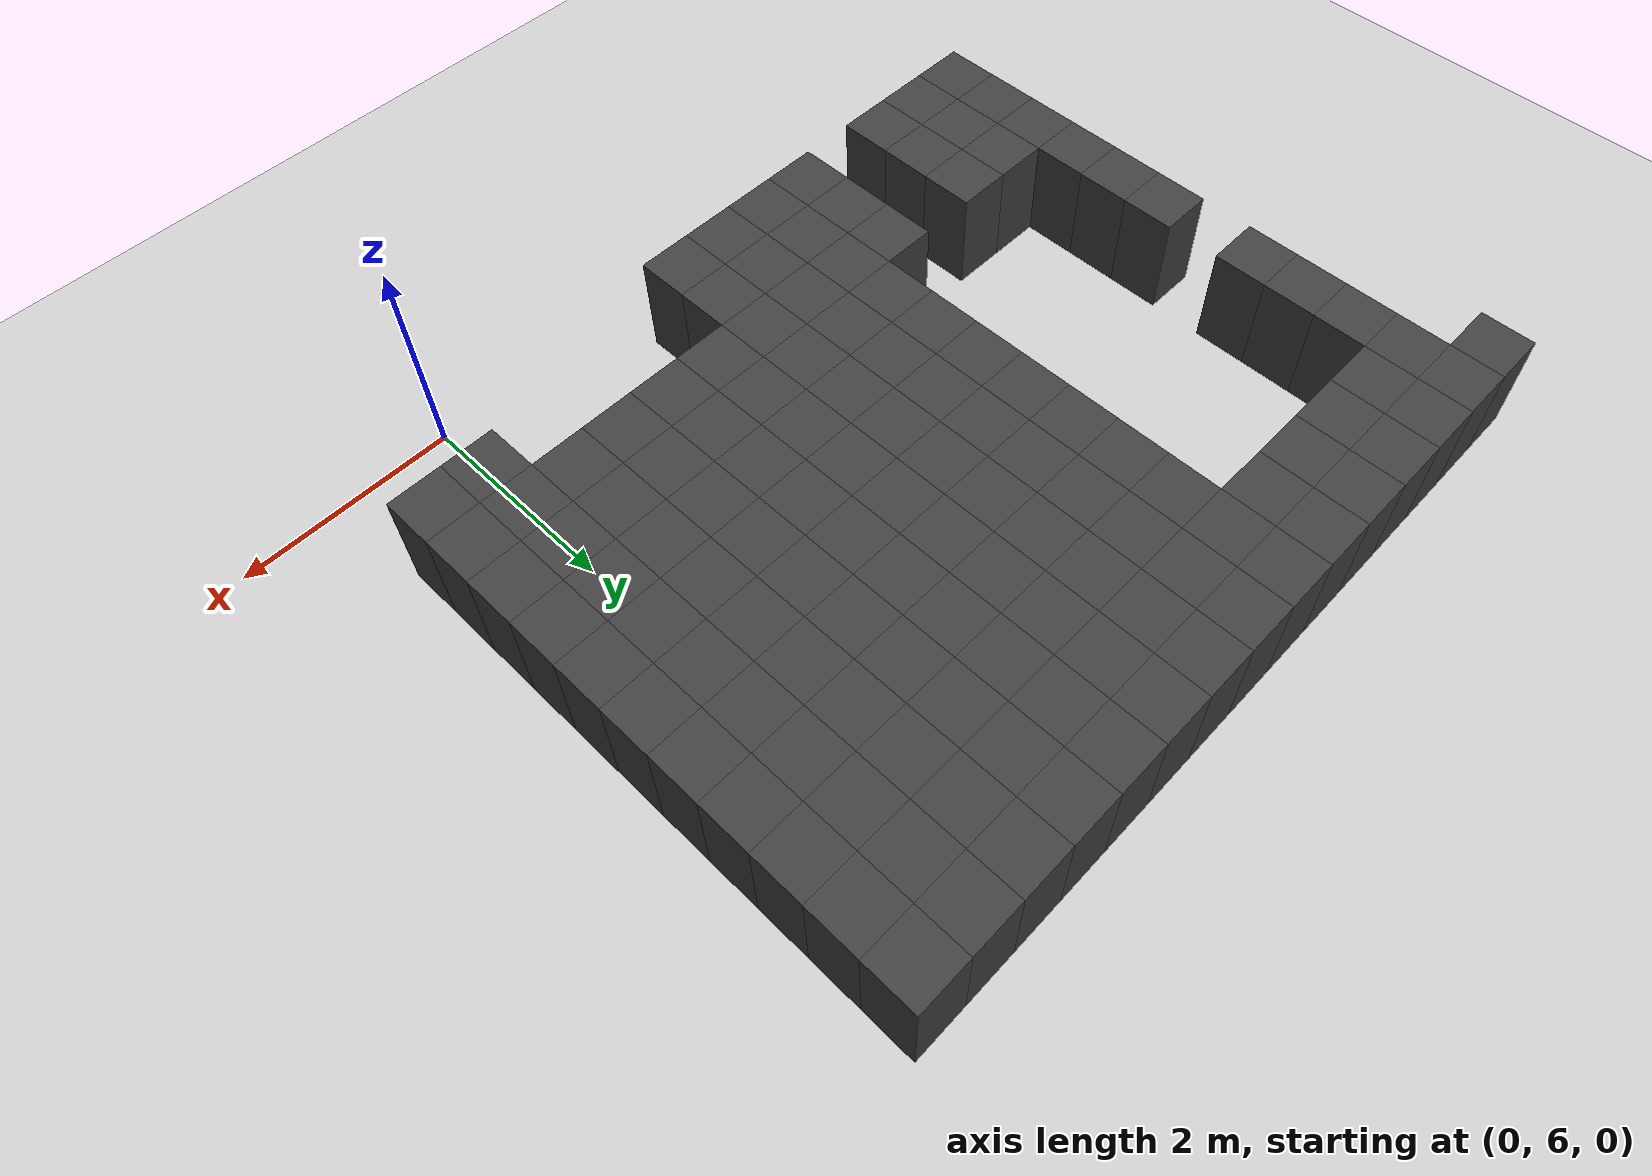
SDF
<sdf version="1.7">
 <world name="map_14190">
  <model name="ground_plane">
   <static>true</static>
   <link name="link">
    <collision name="collision">
     <geometry><plane><normal>0 0 1</normal><size>200 200</size></plane></geometry>
    </collision>
    <visual name="visual">
     <geometry><plane><normal>0 0 1</normal><size>200 200</size></plane></geometry>
     <material><ambient>0.8 0.8 0.8 1</ambient><diffuse>0.8 0.8 0.8 1</diffuse></material>
    </visual>
   </link>
  </model>
  <model name="maze_environment">
   <static>true</static>
   <link name="wall_12">
    <pose>-6.250 12.250 0.500 0 0 0</pose>
    <collision name="col"><geometry><box><size>0.5 0.5 1.0</size></box></geometry></collision>
    <visual name="vis">
     <geometry><box><size>0.5 0.5 1.0</size></box></geometry>
     <material><ambient>0.15 0.15 0.15 1</ambient><diffuse>0.25 0.25 0.25 1</diffuse></material>
    </visual>
   </link>
   <link name="wall_13">
    <pose>-5.750 12.250 0.500 0 0 0</pose>
    <collision name="col"><geometry><box><size>0.5 0.5 1.0</size></box></geometry></collision>
    <visual name="vis">
     <geometry><box><size>0.5 0.5 1.0</size></box></geometry>
     <material><ambient>0.15 0.15 0.15 1</ambient><diffuse>0.25 0.25 0.25 1</diffuse></material>
    </visual>
   </link>
   <link name="wall_14">
    <pose>-5.250 12.250 0.500 0 0 0</pose>
    <collision name="col"><geometry><box><size>0.5 0.5 1.0</size></box></geometry></collision>
    <visual name="vis">
     <geometry><box><size>0.5 0.5 1.0</size></box></geometry>
     <material><ambient>0.15 0.15 0.15 1</ambient><diffuse>0.25 0.25 0.25 1</diffuse></material>
    </visual>
   </link>
   <link name="wall_15">
    <pose>-4.750 12.250 0.500 0 0 0</pose>
    <collision name="col"><geometry><box><size>0.5 0.5 1.0</size></box></geometry></collision>
    <visual name="vis">
     <geometry><box><size>0.5 0.5 1.0</size></box></geometry>
     <material><ambient>0.15 0.15 0.15 1</ambient><diffuse>0.25 0.25 0.25 1</diffuse></material>
    </visual>
   </link>
   <link name="wall_16">
    <pose>-4.250 12.250 0.500 0 0 0</pose>
    <collision name="col"><geometry><box><size>0.5 0.5 1.0</size></box></geometry></collision>
    <visual name="vis">
     <geometry><box><size>0.5 0.5 1.0</size></box></geometry>
     <material><ambient>0.15 0.15 0.15 1</ambient><diffuse>0.25 0.25 0.25 1</diffuse></material>
    </visual>
   </link>
   <link name="wall_17">
    <pose>-3.750 12.250 0.500 0 0 0</pose>
    <collision name="col"><geometry><box><size>0.5 0.5 1.0</size></box></geometry></collision>
    <visual name="vis">
     <geometry><box><size>0.5 0.5 1.0</size></box></geometry>
     <material><ambient>0.15 0.15 0.15 1</ambient><diffuse>0.25 0.25 0.25 1</diffuse></material>
    </visual>
   </link>
   <link name="wall_18">
    <pose>-3.250 12.250 0.500 0 0 0</pose>
    <collision name="col"><geometry><box><size>0.5 0.5 1.0</size></box></geometry></collision>
    <visual name="vis">
     <geometry><box><size>0.5 0.5 1.0</size></box></geometry>
     <material><ambient>0.15 0.15 0.15 1</ambient><diffuse>0.25 0.25 0.25 1</diffuse></material>
    </visual>
   </link>
   <link name="wall_19">
    <pose>-2.750 12.250 0.500 0 0 0</pose>
    <collision name="col"><geometry><box><size>0.5 0.5 1.0</size></box></geometry></collision>
    <visual name="vis">
     <geometry><box><size>0.5 0.5 1.0</size></box></geometry>
     <material><ambient>0.15 0.15 0.15 1</ambient><diffuse>0.25 0.25 0.25 1</diffuse></material>
    </visual>
   </link>
   <link name="wall_20">
    <pose>-2.250 12.250 0.500 0 0 0</pose>
    <collision name="col"><geometry><box><size>0.5 0.5 1.0</size></box></geometry></collision>
    <visual name="vis">
     <geometry><box><size>0.5 0.5 1.0</size></box></geometry>
     <material><ambient>0.15 0.15 0.15 1</ambient><diffuse>0.25 0.25 0.25 1</diffuse></material>
    </visual>
   </link>
   <link name="wall_21">
    <pose>-1.750 12.250 0.500 0 0 0</pose>
    <collision name="col"><geometry><box><size>0.5 0.5 1.0</size></box></geometry></collision>
    <visual name="vis">
     <geometry><box><size>0.5 0.5 1.0</size></box></geometry>
     <material><ambient>0.15 0.15 0.15 1</ambient><diffuse>0.25 0.25 0.25 1</diffuse></material>
    </visual>
   </link>
   <link name="wall_22">
    <pose>-1.250 12.250 0.500 0 0 0</pose>
    <collision name="col"><geometry><box><size>0.5 0.5 1.0</size></box></geometry></collision>
    <visual name="vis">
     <geometry><box><size>0.5 0.5 1.0</size></box></geometry>
     <material><ambient>0.15 0.15 0.15 1</ambient><diffuse>0.25 0.25 0.25 1</diffuse></material>
    </visual>
   </link>
   <link name="wall_23">
    <pose>-0.750 12.250 0.500 0 0 0</pose>
    <collision name="col"><geometry><box><size>0.5 0.5 1.0</size></box></geometry></collision>
    <visual name="vis">
     <geometry><box><size>0.5 0.5 1.0</size></box></geometry>
     <material><ambient>0.15 0.15 0.15 1</ambient><diffuse>0.25 0.25 0.25 1</diffuse></material>
    </visual>
   </link>
   <link name="wall_24">
    <pose>-0.250 12.250 0.500 0 0 0</pose>
    <collision name="col"><geometry><box><size>0.5 0.5 1.0</size></box></geometry></collision>
    <visual name="vis">
     <geometry><box><size>0.5 0.5 1.0</size></box></geometry>
     <material><ambient>0.15 0.15 0.15 1</ambient><diffuse>0.25 0.25 0.25 1</diffuse></material>
    </visual>
   </link>
   <link name="wall_25">
    <pose>0.250 12.250 0.500 0 0 0</pose>
    <collision name="col"><geometry><box><size>0.5 0.5 1.0</size></box></geometry></collision>
    <visual name="vis">
     <geometry><box><size>0.5 0.5 1.0</size></box></geometry>
     <material><ambient>0.15 0.15 0.15 1</ambient><diffuse>0.25 0.25 0.25 1</diffuse></material>
    </visual>
   </link>
   <link name="wall_26">
    <pose>0.750 12.250 0.500 0 0 0</pose>
    <collision name="col"><geometry><box><size>0.5 0.5 1.0</size></box></geometry></collision>
    <visual name="vis">
     <geometry><box><size>0.5 0.5 1.0</size></box></geometry>
     <material><ambient>0.15 0.15 0.15 1</ambient><diffuse>0.25 0.25 0.25 1</diffuse></material>
    </visual>
   </link>
   <link name="wall_60">
    <pose>-5.750 11.750 0.500 0 0 0</pose>
    <collision name="col"><geometry><box><size>0.5 0.5 1.0</size></box></geometry></collision>
    <visual name="vis">
     <geometry><box><size>0.5 0.5 1.0</size></box></geometry>
     <material><ambient>0.15 0.15 0.15 1</ambient><diffuse>0.25 0.25 0.25 1</diffuse></material>
    </visual>
   </link>
   <link name="wall_61">
    <pose>-5.250 11.750 0.500 0 0 0</pose>
    <collision name="col"><geometry><box><size>0.5 0.5 1.0</size></box></geometry></collision>
    <visual name="vis">
     <geometry><box><size>0.5 0.5 1.0</size></box></geometry>
     <material><ambient>0.15 0.15 0.15 1</ambient><diffuse>0.25 0.25 0.25 1</diffuse></material>
    </visual>
   </link>
   <link name="wall_62">
    <pose>-4.750 11.750 0.500 0 0 0</pose>
    <collision name="col"><geometry><box><size>0.5 0.5 1.0</size></box></geometry></collision>
    <visual name="vis">
     <geometry><box><size>0.5 0.5 1.0</size></box></geometry>
     <material><ambient>0.15 0.15 0.15 1</ambient><diffuse>0.25 0.25 0.25 1</diffuse></material>
    </visual>
   </link>
   <link name="wall_63">
    <pose>-4.250 11.750 0.500 0 0 0</pose>
    <collision name="col"><geometry><box><size>0.5 0.5 1.0</size></box></geometry></collision>
    <visual name="vis">
     <geometry><box><size>0.5 0.5 1.0</size></box></geometry>
     <material><ambient>0.15 0.15 0.15 1</ambient><diffuse>0.25 0.25 0.25 1</diffuse></material>
    </visual>
   </link>
   <link name="wall_64">
    <pose>-3.750 11.750 0.500 0 0 0</pose>
    <collision name="col"><geometry><box><size>0.5 0.5 1.0</size></box></geometry></collision>
    <visual name="vis">
     <geometry><box><size>0.5 0.5 1.0</size></box></geometry>
     <material><ambient>0.15 0.15 0.15 1</ambient><diffuse>0.25 0.25 0.25 1</diffuse></material>
    </visual>
   </link>
   <link name="wall_65">
    <pose>-3.250 11.750 0.500 0 0 0</pose>
    <collision name="col"><geometry><box><size>0.5 0.5 1.0</size></box></geometry></collision>
    <visual name="vis">
     <geometry><box><size>0.5 0.5 1.0</size></box></geometry>
     <material><ambient>0.15 0.15 0.15 1</ambient><diffuse>0.25 0.25 0.25 1</diffuse></material>
    </visual>
   </link>
   <link name="wall_66">
    <pose>-2.750 11.750 0.500 0 0 0</pose>
    <collision name="col"><geometry><box><size>0.5 0.5 1.0</size></box></geometry></collision>
    <visual name="vis">
     <geometry><box><size>0.5 0.5 1.0</size></box></geometry>
     <material><ambient>0.15 0.15 0.15 1</ambient><diffuse>0.25 0.25 0.25 1</diffuse></material>
    </visual>
   </link>
   <link name="wall_67">
    <pose>-2.250 11.750 0.500 0 0 0</pose>
    <collision name="col"><geometry><box><size>0.5 0.5 1.0</size></box></geometry></collision>
    <visual name="vis">
     <geometry><box><size>0.5 0.5 1.0</size></box></geometry>
     <material><ambient>0.15 0.15 0.15 1</ambient><diffuse>0.25 0.25 0.25 1</diffuse></material>
    </visual>
   </link>
   <link name="wall_68">
    <pose>-1.750 11.750 0.500 0 0 0</pose>
    <collision name="col"><geometry><box><size>0.5 0.5 1.0</size></box></geometry></collision>
    <visual name="vis">
     <geometry><box><size>0.5 0.5 1.0</size></box></geometry>
     <material><ambient>0.15 0.15 0.15 1</ambient><diffuse>0.25 0.25 0.25 1</diffuse></material>
    </visual>
   </link>
   <link name="wall_69">
    <pose>-1.250 11.750 0.500 0 0 0</pose>
    <collision name="col"><geometry><box><size>0.5 0.5 1.0</size></box></geometry></collision>
    <visual name="vis">
     <geometry><box><size>0.5 0.5 1.0</size></box></geometry>
     <material><ambient>0.15 0.15 0.15 1</ambient><diffuse>0.25 0.25 0.25 1</diffuse></material>
    </visual>
   </link>
   <link name="wall_70">
    <pose>-0.750 11.750 0.500 0 0 0</pose>
    <collision name="col"><geometry><box><size>0.5 0.5 1.0</size></box></geometry></collision>
    <visual name="vis">
     <geometry><box><size>0.5 0.5 1.0</size></box></geometry>
     <material><ambient>0.15 0.15 0.15 1</ambient><diffuse>0.25 0.25 0.25 1</diffuse></material>
    </visual>
   </link>
   <link name="wall_71">
    <pose>-0.250 11.750 0.500 0 0 0</pose>
    <collision name="col"><geometry><box><size>0.5 0.5 1.0</size></box></geometry></collision>
    <visual name="vis">
     <geometry><box><size>0.5 0.5 1.0</size></box></geometry>
     <material><ambient>0.15 0.15 0.15 1</ambient><diffuse>0.25 0.25 0.25 1</diffuse></material>
    </visual>
   </link>
   <link name="wall_72">
    <pose>0.250 11.750 0.500 0 0 0</pose>
    <collision name="col"><geometry><box><size>0.5 0.5 1.0</size></box></geometry></collision>
    <visual name="vis">
     <geometry><box><size>0.5 0.5 1.0</size></box></geometry>
     <material><ambient>0.15 0.15 0.15 1</ambient><diffuse>0.25 0.25 0.25 1</diffuse></material>
    </visual>
   </link>
   <link name="wall_73">
    <pose>0.750 11.750 0.500 0 0 0</pose>
    <collision name="col"><geometry><box><size>0.5 0.5 1.0</size></box></geometry></collision>
    <visual name="vis">
     <geometry><box><size>0.5 0.5 1.0</size></box></geometry>
     <material><ambient>0.15 0.15 0.15 1</ambient><diffuse>0.25 0.25 0.25 1</diffuse></material>
    </visual>
   </link>
   <link name="wall_107">
    <pose>-5.750 11.250 0.500 0 0 0</pose>
    <collision name="col"><geometry><box><size>0.5 0.5 1.0</size></box></geometry></collision>
    <visual name="vis">
     <geometry><box><size>0.5 0.5 1.0</size></box></geometry>
     <material><ambient>0.15 0.15 0.15 1</ambient><diffuse>0.25 0.25 0.25 1</diffuse></material>
    </visual>
   </link>
   <link name="wall_108">
    <pose>-3.250 11.250 0.500 0 0 0</pose>
    <collision name="col"><geometry><box><size>0.5 0.5 1.0</size></box></geometry></collision>
    <visual name="vis">
     <geometry><box><size>0.5 0.5 1.0</size></box></geometry>
     <material><ambient>0.15 0.15 0.15 1</ambient><diffuse>0.25 0.25 0.25 1</diffuse></material>
    </visual>
   </link>
   <link name="wall_109">
    <pose>-2.750 11.250 0.500 0 0 0</pose>
    <collision name="col"><geometry><box><size>0.5 0.5 1.0</size></box></geometry></collision>
    <visual name="vis">
     <geometry><box><size>0.5 0.5 1.0</size></box></geometry>
     <material><ambient>0.15 0.15 0.15 1</ambient><diffuse>0.25 0.25 0.25 1</diffuse></material>
    </visual>
   </link>
   <link name="wall_110">
    <pose>-2.250 11.250 0.500 0 0 0</pose>
    <collision name="col"><geometry><box><size>0.5 0.5 1.0</size></box></geometry></collision>
    <visual name="vis">
     <geometry><box><size>0.5 0.5 1.0</size></box></geometry>
     <material><ambient>0.15 0.15 0.15 1</ambient><diffuse>0.25 0.25 0.25 1</diffuse></material>
    </visual>
   </link>
   <link name="wall_111">
    <pose>-1.750 11.250 0.500 0 0 0</pose>
    <collision name="col"><geometry><box><size>0.5 0.5 1.0</size></box></geometry></collision>
    <visual name="vis">
     <geometry><box><size>0.5 0.5 1.0</size></box></geometry>
     <material><ambient>0.15 0.15 0.15 1</ambient><diffuse>0.25 0.25 0.25 1</diffuse></material>
    </visual>
   </link>
   <link name="wall_112">
    <pose>-1.250 11.250 0.500 0 0 0</pose>
    <collision name="col"><geometry><box><size>0.5 0.5 1.0</size></box></geometry></collision>
    <visual name="vis">
     <geometry><box><size>0.5 0.5 1.0</size></box></geometry>
     <material><ambient>0.15 0.15 0.15 1</ambient><diffuse>0.25 0.25 0.25 1</diffuse></material>
    </visual>
   </link>
   <link name="wall_113">
    <pose>-0.750 11.250 0.500 0 0 0</pose>
    <collision name="col"><geometry><box><size>0.5 0.5 1.0</size></box></geometry></collision>
    <visual name="vis">
     <geometry><box><size>0.5 0.5 1.0</size></box></geometry>
     <material><ambient>0.15 0.15 0.15 1</ambient><diffuse>0.25 0.25 0.25 1</diffuse></material>
    </visual>
   </link>
   <link name="wall_114">
    <pose>-0.250 11.250 0.500 0 0 0</pose>
    <collision name="col"><geometry><box><size>0.5 0.5 1.0</size></box></geometry></collision>
    <visual name="vis">
     <geometry><box><size>0.5 0.5 1.0</size></box></geometry>
     <material><ambient>0.15 0.15 0.15 1</ambient><diffuse>0.25 0.25 0.25 1</diffuse></material>
    </visual>
   </link>
   <link name="wall_115">
    <pose>0.250 11.250 0.500 0 0 0</pose>
    <collision name="col"><geometry><box><size>0.5 0.5 1.0</size></box></geometry></collision>
    <visual name="vis">
     <geometry><box><size>0.5 0.5 1.0</size></box></geometry>
     <material><ambient>0.15 0.15 0.15 1</ambient><diffuse>0.25 0.25 0.25 1</diffuse></material>
    </visual>
   </link>
   <link name="wall_116">
    <pose>0.750 11.250 0.500 0 0 0</pose>
    <collision name="col"><geometry><box><size>0.5 0.5 1.0</size></box></geometry></collision>
    <visual name="vis">
     <geometry><box><size>0.5 0.5 1.0</size></box></geometry>
     <material><ambient>0.15 0.15 0.15 1</ambient><diffuse>0.25 0.25 0.25 1</diffuse></material>
    </visual>
   </link>
   <link name="wall_150">
    <pose>-5.750 10.750 0.500 0 0 0</pose>
    <collision name="col"><geometry><box><size>0.5 0.5 1.0</size></box></geometry></collision>
    <visual name="vis">
     <geometry><box><size>0.5 0.5 1.0</size></box></geometry>
     <material><ambient>0.15 0.15 0.15 1</ambient><diffuse>0.25 0.25 0.25 1</diffuse></material>
    </visual>
   </link>
   <link name="wall_151">
    <pose>-3.250 10.750 0.500 0 0 0</pose>
    <collision name="col"><geometry><box><size>0.5 0.5 1.0</size></box></geometry></collision>
    <visual name="vis">
     <geometry><box><size>0.5 0.5 1.0</size></box></geometry>
     <material><ambient>0.15 0.15 0.15 1</ambient><diffuse>0.25 0.25 0.25 1</diffuse></material>
    </visual>
   </link>
   <link name="wall_152">
    <pose>-2.750 10.750 0.500 0 0 0</pose>
    <collision name="col"><geometry><box><size>0.5 0.5 1.0</size></box></geometry></collision>
    <visual name="vis">
     <geometry><box><size>0.5 0.5 1.0</size></box></geometry>
     <material><ambient>0.15 0.15 0.15 1</ambient><diffuse>0.25 0.25 0.25 1</diffuse></material>
    </visual>
   </link>
   <link name="wall_153">
    <pose>-2.250 10.750 0.500 0 0 0</pose>
    <collision name="col"><geometry><box><size>0.5 0.5 1.0</size></box></geometry></collision>
    <visual name="vis">
     <geometry><box><size>0.5 0.5 1.0</size></box></geometry>
     <material><ambient>0.15 0.15 0.15 1</ambient><diffuse>0.25 0.25 0.25 1</diffuse></material>
    </visual>
   </link>
   <link name="wall_154">
    <pose>-1.750 10.750 0.500 0 0 0</pose>
    <collision name="col"><geometry><box><size>0.5 0.5 1.0</size></box></geometry></collision>
    <visual name="vis">
     <geometry><box><size>0.5 0.5 1.0</size></box></geometry>
     <material><ambient>0.15 0.15 0.15 1</ambient><diffuse>0.25 0.25 0.25 1</diffuse></material>
    </visual>
   </link>
   <link name="wall_155">
    <pose>-1.250 10.750 0.500 0 0 0</pose>
    <collision name="col"><geometry><box><size>0.5 0.5 1.0</size></box></geometry></collision>
    <visual name="vis">
     <geometry><box><size>0.5 0.5 1.0</size></box></geometry>
     <material><ambient>0.15 0.15 0.15 1</ambient><diffuse>0.25 0.25 0.25 1</diffuse></material>
    </visual>
   </link>
   <link name="wall_156">
    <pose>-0.750 10.750 0.500 0 0 0</pose>
    <collision name="col"><geometry><box><size>0.5 0.5 1.0</size></box></geometry></collision>
    <visual name="vis">
     <geometry><box><size>0.5 0.5 1.0</size></box></geometry>
     <material><ambient>0.15 0.15 0.15 1</ambient><diffuse>0.25 0.25 0.25 1</diffuse></material>
    </visual>
   </link>
   <link name="wall_157">
    <pose>-0.250 10.750 0.500 0 0 0</pose>
    <collision name="col"><geometry><box><size>0.5 0.5 1.0</size></box></geometry></collision>
    <visual name="vis">
     <geometry><box><size>0.5 0.5 1.0</size></box></geometry>
     <material><ambient>0.15 0.15 0.15 1</ambient><diffuse>0.25 0.25 0.25 1</diffuse></material>
    </visual>
   </link>
   <link name="wall_158">
    <pose>0.250 10.750 0.500 0 0 0</pose>
    <collision name="col"><geometry><box><size>0.5 0.5 1.0</size></box></geometry></collision>
    <visual name="vis">
     <geometry><box><size>0.5 0.5 1.0</size></box></geometry>
     <material><ambient>0.15 0.15 0.15 1</ambient><diffuse>0.25 0.25 0.25 1</diffuse></material>
    </visual>
   </link>
   <link name="wall_159">
    <pose>0.750 10.750 0.500 0 0 0</pose>
    <collision name="col"><geometry><box><size>0.5 0.5 1.0</size></box></geometry></collision>
    <visual name="vis">
     <geometry><box><size>0.5 0.5 1.0</size></box></geometry>
     <material><ambient>0.15 0.15 0.15 1</ambient><diffuse>0.25 0.25 0.25 1</diffuse></material>
    </visual>
   </link>
   <link name="wall_195">
    <pose>-5.750 10.250 0.500 0 0 0</pose>
    <collision name="col"><geometry><box><size>0.5 0.5 1.0</size></box></geometry></collision>
    <visual name="vis">
     <geometry><box><size>0.5 0.5 1.0</size></box></geometry>
     <material><ambient>0.15 0.15 0.15 1</ambient><diffuse>0.25 0.25 0.25 1</diffuse></material>
    </visual>
   </link>
   <link name="wall_196">
    <pose>-3.250 10.250 0.500 0 0 0</pose>
    <collision name="col"><geometry><box><size>0.5 0.5 1.0</size></box></geometry></collision>
    <visual name="vis">
     <geometry><box><size>0.5 0.5 1.0</size></box></geometry>
     <material><ambient>0.15 0.15 0.15 1</ambient><diffuse>0.25 0.25 0.25 1</diffuse></material>
    </visual>
   </link>
   <link name="wall_197">
    <pose>-2.750 10.250 0.500 0 0 0</pose>
    <collision name="col"><geometry><box><size>0.5 0.5 1.0</size></box></geometry></collision>
    <visual name="vis">
     <geometry><box><size>0.5 0.5 1.0</size></box></geometry>
     <material><ambient>0.15 0.15 0.15 1</ambient><diffuse>0.25 0.25 0.25 1</diffuse></material>
    </visual>
   </link>
   <link name="wall_198">
    <pose>-2.250 10.250 0.500 0 0 0</pose>
    <collision name="col"><geometry><box><size>0.5 0.5 1.0</size></box></geometry></collision>
    <visual name="vis">
     <geometry><box><size>0.5 0.5 1.0</size></box></geometry>
     <material><ambient>0.15 0.15 0.15 1</ambient><diffuse>0.25 0.25 0.25 1</diffuse></material>
    </visual>
   </link>
   <link name="wall_199">
    <pose>-1.750 10.250 0.500 0 0 0</pose>
    <collision name="col"><geometry><box><size>0.5 0.5 1.0</size></box></geometry></collision>
    <visual name="vis">
     <geometry><box><size>0.5 0.5 1.0</size></box></geometry>
     <material><ambient>0.15 0.15 0.15 1</ambient><diffuse>0.25 0.25 0.25 1</diffuse></material>
    </visual>
   </link>
   <link name="wall_200">
    <pose>-1.250 10.250 0.500 0 0 0</pose>
    <collision name="col"><geometry><box><size>0.5 0.5 1.0</size></box></geometry></collision>
    <visual name="vis">
     <geometry><box><size>0.5 0.5 1.0</size></box></geometry>
     <material><ambient>0.15 0.15 0.15 1</ambient><diffuse>0.25 0.25 0.25 1</diffuse></material>
    </visual>
   </link>
   <link name="wall_201">
    <pose>-0.750 10.250 0.500 0 0 0</pose>
    <collision name="col"><geometry><box><size>0.5 0.5 1.0</size></box></geometry></collision>
    <visual name="vis">
     <geometry><box><size>0.5 0.5 1.0</size></box></geometry>
     <material><ambient>0.15 0.15 0.15 1</ambient><diffuse>0.25 0.25 0.25 1</diffuse></material>
    </visual>
   </link>
   <link name="wall_202">
    <pose>-0.250 10.250 0.500 0 0 0</pose>
    <collision name="col"><geometry><box><size>0.5 0.5 1.0</size></box></geometry></collision>
    <visual name="vis">
     <geometry><box><size>0.5 0.5 1.0</size></box></geometry>
     <material><ambient>0.15 0.15 0.15 1</ambient><diffuse>0.25 0.25 0.25 1</diffuse></material>
    </visual>
   </link>
   <link name="wall_203">
    <pose>0.250 10.250 0.500 0 0 0</pose>
    <collision name="col"><geometry><box><size>0.5 0.5 1.0</size></box></geometry></collision>
    <visual name="vis">
     <geometry><box><size>0.5 0.5 1.0</size></box></geometry>
     <material><ambient>0.15 0.15 0.15 1</ambient><diffuse>0.25 0.25 0.25 1</diffuse></material>
    </visual>
   </link>
   <link name="wall_204">
    <pose>0.750 10.250 0.500 0 0 0</pose>
    <collision name="col"><geometry><box><size>0.5 0.5 1.0</size></box></geometry></collision>
    <visual name="vis">
     <geometry><box><size>0.5 0.5 1.0</size></box></geometry>
     <material><ambient>0.15 0.15 0.15 1</ambient><diffuse>0.25 0.25 0.25 1</diffuse></material>
    </visual>
   </link>
   <link name="wall_230">
    <pose>-3.250 9.750 0.500 0 0 0</pose>
    <collision name="col"><geometry><box><size>0.5 0.5 1.0</size></box></geometry></collision>
    <visual name="vis">
     <geometry><box><size>0.5 0.5 1.0</size></box></geometry>
     <material><ambient>0.15 0.15 0.15 1</ambient><diffuse>0.25 0.25 0.25 1</diffuse></material>
    </visual>
   </link>
   <link name="wall_231">
    <pose>-2.750 9.750 0.500 0 0 0</pose>
    <collision name="col"><geometry><box><size>0.5 0.5 1.0</size></box></geometry></collision>
    <visual name="vis">
     <geometry><box><size>0.5 0.5 1.0</size></box></geometry>
     <material><ambient>0.15 0.15 0.15 1</ambient><diffuse>0.25 0.25 0.25 1</diffuse></material>
    </visual>
   </link>
   <link name="wall_232">
    <pose>-2.250 9.750 0.500 0 0 0</pose>
    <collision name="col"><geometry><box><size>0.5 0.5 1.0</size></box></geometry></collision>
    <visual name="vis">
     <geometry><box><size>0.5 0.5 1.0</size></box></geometry>
     <material><ambient>0.15 0.15 0.15 1</ambient><diffuse>0.25 0.25 0.25 1</diffuse></material>
    </visual>
   </link>
   <link name="wall_233">
    <pose>-1.750 9.750 0.500 0 0 0</pose>
    <collision name="col"><geometry><box><size>0.5 0.5 1.0</size></box></geometry></collision>
    <visual name="vis">
     <geometry><box><size>0.5 0.5 1.0</size></box></geometry>
     <material><ambient>0.15 0.15 0.15 1</ambient><diffuse>0.25 0.25 0.25 1</diffuse></material>
    </visual>
   </link>
   <link name="wall_234">
    <pose>-1.250 9.750 0.500 0 0 0</pose>
    <collision name="col"><geometry><box><size>0.5 0.5 1.0</size></box></geometry></collision>
    <visual name="vis">
     <geometry><box><size>0.5 0.5 1.0</size></box></geometry>
     <material><ambient>0.15 0.15 0.15 1</ambient><diffuse>0.25 0.25 0.25 1</diffuse></material>
    </visual>
   </link>
   <link name="wall_235">
    <pose>-0.750 9.750 0.500 0 0 0</pose>
    <collision name="col"><geometry><box><size>0.5 0.5 1.0</size></box></geometry></collision>
    <visual name="vis">
     <geometry><box><size>0.5 0.5 1.0</size></box></geometry>
     <material><ambient>0.15 0.15 0.15 1</ambient><diffuse>0.25 0.25 0.25 1</diffuse></material>
    </visual>
   </link>
   <link name="wall_236">
    <pose>-0.250 9.750 0.500 0 0 0</pose>
    <collision name="col"><geometry><box><size>0.5 0.5 1.0</size></box></geometry></collision>
    <visual name="vis">
     <geometry><box><size>0.5 0.5 1.0</size></box></geometry>
     <material><ambient>0.15 0.15 0.15 1</ambient><diffuse>0.25 0.25 0.25 1</diffuse></material>
    </visual>
   </link>
   <link name="wall_237">
    <pose>0.250 9.750 0.500 0 0 0</pose>
    <collision name="col"><geometry><box><size>0.5 0.5 1.0</size></box></geometry></collision>
    <visual name="vis">
     <geometry><box><size>0.5 0.5 1.0</size></box></geometry>
     <material><ambient>0.15 0.15 0.15 1</ambient><diffuse>0.25 0.25 0.25 1</diffuse></material>
    </visual>
   </link>
   <link name="wall_238">
    <pose>0.750 9.750 0.500 0 0 0</pose>
    <collision name="col"><geometry><box><size>0.5 0.5 1.0</size></box></geometry></collision>
    <visual name="vis">
     <geometry><box><size>0.5 0.5 1.0</size></box></geometry>
     <material><ambient>0.15 0.15 0.15 1</ambient><diffuse>0.25 0.25 0.25 1</diffuse></material>
    </visual>
   </link>
   <link name="wall_269">
    <pose>-5.750 9.250 0.500 0 0 0</pose>
    <collision name="col"><geometry><box><size>0.5 0.5 1.0</size></box></geometry></collision>
    <visual name="vis">
     <geometry><box><size>0.5 0.5 1.0</size></box></geometry>
     <material><ambient>0.15 0.15 0.15 1</ambient><diffuse>0.25 0.25 0.25 1</diffuse></material>
    </visual>
   </link>
   <link name="wall_270">
    <pose>-3.250 9.250 0.500 0 0 0</pose>
    <collision name="col"><geometry><box><size>0.5 0.5 1.0</size></box></geometry></collision>
    <visual name="vis">
     <geometry><box><size>0.5 0.5 1.0</size></box></geometry>
     <material><ambient>0.15 0.15 0.15 1</ambient><diffuse>0.25 0.25 0.25 1</diffuse></material>
    </visual>
   </link>
   <link name="wall_271">
    <pose>-2.750 9.250 0.500 0 0 0</pose>
    <collision name="col"><geometry><box><size>0.5 0.5 1.0</size></box></geometry></collision>
    <visual name="vis">
     <geometry><box><size>0.5 0.5 1.0</size></box></geometry>
     <material><ambient>0.15 0.15 0.15 1</ambient><diffuse>0.25 0.25 0.25 1</diffuse></material>
    </visual>
   </link>
   <link name="wall_272">
    <pose>-2.250 9.250 0.500 0 0 0</pose>
    <collision name="col"><geometry><box><size>0.5 0.5 1.0</size></box></geometry></collision>
    <visual name="vis">
     <geometry><box><size>0.5 0.5 1.0</size></box></geometry>
     <material><ambient>0.15 0.15 0.15 1</ambient><diffuse>0.25 0.25 0.25 1</diffuse></material>
    </visual>
   </link>
   <link name="wall_273">
    <pose>-1.750 9.250 0.500 0 0 0</pose>
    <collision name="col"><geometry><box><size>0.5 0.5 1.0</size></box></geometry></collision>
    <visual name="vis">
     <geometry><box><size>0.5 0.5 1.0</size></box></geometry>
     <material><ambient>0.15 0.15 0.15 1</ambient><diffuse>0.25 0.25 0.25 1</diffuse></material>
    </visual>
   </link>
   <link name="wall_274">
    <pose>-1.250 9.250 0.500 0 0 0</pose>
    <collision name="col"><geometry><box><size>0.5 0.5 1.0</size></box></geometry></collision>
    <visual name="vis">
     <geometry><box><size>0.5 0.5 1.0</size></box></geometry>
     <material><ambient>0.15 0.15 0.15 1</ambient><diffuse>0.25 0.25 0.25 1</diffuse></material>
    </visual>
   </link>
   <link name="wall_275">
    <pose>-0.750 9.250 0.500 0 0 0</pose>
    <collision name="col"><geometry><box><size>0.5 0.5 1.0</size></box></geometry></collision>
    <visual name="vis">
     <geometry><box><size>0.5 0.5 1.0</size></box></geometry>
     <material><ambient>0.15 0.15 0.15 1</ambient><diffuse>0.25 0.25 0.25 1</diffuse></material>
    </visual>
   </link>
   <link name="wall_276">
    <pose>-0.250 9.250 0.500 0 0 0</pose>
    <collision name="col"><geometry><box><size>0.5 0.5 1.0</size></box></geometry></collision>
    <visual name="vis">
     <geometry><box><size>0.5 0.5 1.0</size></box></geometry>
     <material><ambient>0.15 0.15 0.15 1</ambient><diffuse>0.25 0.25 0.25 1</diffuse></material>
    </visual>
   </link>
   <link name="wall_277">
    <pose>0.250 9.250 0.500 0 0 0</pose>
    <collision name="col"><geometry><box><size>0.5 0.5 1.0</size></box></geometry></collision>
    <visual name="vis">
     <geometry><box><size>0.5 0.5 1.0</size></box></geometry>
     <material><ambient>0.15 0.15 0.15 1</ambient><diffuse>0.25 0.25 0.25 1</diffuse></material>
    </visual>
   </link>
   <link name="wall_278">
    <pose>0.750 9.250 0.500 0 0 0</pose>
    <collision name="col"><geometry><box><size>0.5 0.5 1.0</size></box></geometry></collision>
    <visual name="vis">
     <geometry><box><size>0.5 0.5 1.0</size></box></geometry>
     <material><ambient>0.15 0.15 0.15 1</ambient><diffuse>0.25 0.25 0.25 1</diffuse></material>
    </visual>
   </link>
   <link name="wall_309">
    <pose>-5.750 8.750 0.500 0 0 0</pose>
    <collision name="col"><geometry><box><size>0.5 0.5 1.0</size></box></geometry></collision>
    <visual name="vis">
     <geometry><box><size>0.5 0.5 1.0</size></box></geometry>
     <material><ambient>0.15 0.15 0.15 1</ambient><diffuse>0.25 0.25 0.25 1</diffuse></material>
    </visual>
   </link>
   <link name="wall_310">
    <pose>-3.250 8.750 0.500 0 0 0</pose>
    <collision name="col"><geometry><box><size>0.5 0.5 1.0</size></box></geometry></collision>
    <visual name="vis">
     <geometry><box><size>0.5 0.5 1.0</size></box></geometry>
     <material><ambient>0.15 0.15 0.15 1</ambient><diffuse>0.25 0.25 0.25 1</diffuse></material>
    </visual>
   </link>
   <link name="wall_311">
    <pose>-2.750 8.750 0.500 0 0 0</pose>
    <collision name="col"><geometry><box><size>0.5 0.5 1.0</size></box></geometry></collision>
    <visual name="vis">
     <geometry><box><size>0.5 0.5 1.0</size></box></geometry>
     <material><ambient>0.15 0.15 0.15 1</ambient><diffuse>0.25 0.25 0.25 1</diffuse></material>
    </visual>
   </link>
   <link name="wall_312">
    <pose>-2.250 8.750 0.500 0 0 0</pose>
    <collision name="col"><geometry><box><size>0.5 0.5 1.0</size></box></geometry></collision>
    <visual name="vis">
     <geometry><box><size>0.5 0.5 1.0</size></box></geometry>
     <material><ambient>0.15 0.15 0.15 1</ambient><diffuse>0.25 0.25 0.25 1</diffuse></material>
    </visual>
   </link>
   <link name="wall_313">
    <pose>-1.750 8.750 0.500 0 0 0</pose>
    <collision name="col"><geometry><box><size>0.5 0.5 1.0</size></box></geometry></collision>
    <visual name="vis">
     <geometry><box><size>0.5 0.5 1.0</size></box></geometry>
     <material><ambient>0.15 0.15 0.15 1</ambient><diffuse>0.25 0.25 0.25 1</diffuse></material>
    </visual>
   </link>
   <link name="wall_314">
    <pose>-1.250 8.750 0.500 0 0 0</pose>
    <collision name="col"><geometry><box><size>0.5 0.5 1.0</size></box></geometry></collision>
    <visual name="vis">
     <geometry><box><size>0.5 0.5 1.0</size></box></geometry>
     <material><ambient>0.15 0.15 0.15 1</ambient><diffuse>0.25 0.25 0.25 1</diffuse></material>
    </visual>
   </link>
   <link name="wall_315">
    <pose>-0.750 8.750 0.500 0 0 0</pose>
    <collision name="col"><geometry><box><size>0.5 0.5 1.0</size></box></geometry></collision>
    <visual name="vis">
     <geometry><box><size>0.5 0.5 1.0</size></box></geometry>
     <material><ambient>0.15 0.15 0.15 1</ambient><diffuse>0.25 0.25 0.25 1</diffuse></material>
    </visual>
   </link>
   <link name="wall_316">
    <pose>-0.250 8.750 0.500 0 0 0</pose>
    <collision name="col"><geometry><box><size>0.5 0.5 1.0</size></box></geometry></collision>
    <visual name="vis">
     <geometry><box><size>0.5 0.5 1.0</size></box></geometry>
     <material><ambient>0.15 0.15 0.15 1</ambient><diffuse>0.25 0.25 0.25 1</diffuse></material>
    </visual>
   </link>
   <link name="wall_317">
    <pose>0.250 8.750 0.500 0 0 0</pose>
    <collision name="col"><geometry><box><size>0.5 0.5 1.0</size></box></geometry></collision>
    <visual name="vis">
     <geometry><box><size>0.5 0.5 1.0</size></box></geometry>
     <material><ambient>0.15 0.15 0.15 1</ambient><diffuse>0.25 0.25 0.25 1</diffuse></material>
    </visual>
   </link>
   <link name="wall_318">
    <pose>0.750 8.750 0.500 0 0 0</pose>
    <collision name="col"><geometry><box><size>0.5 0.5 1.0</size></box></geometry></collision>
    <visual name="vis">
     <geometry><box><size>0.5 0.5 1.0</size></box></geometry>
     <material><ambient>0.15 0.15 0.15 1</ambient><diffuse>0.25 0.25 0.25 1</diffuse></material>
    </visual>
   </link>
   <link name="wall_343">
    <pose>-5.750 8.250 0.500 0 0 0</pose>
    <collision name="col"><geometry><box><size>0.5 0.5 1.0</size></box></geometry></collision>
    <visual name="vis">
     <geometry><box><size>0.5 0.5 1.0</size></box></geometry>
     <material><ambient>0.15 0.15 0.15 1</ambient><diffuse>0.25 0.25 0.25 1</diffuse></material>
    </visual>
   </link>
   <link name="wall_344">
    <pose>-3.250 8.250 0.500 0 0 0</pose>
    <collision name="col"><geometry><box><size>0.5 0.5 1.0</size></box></geometry></collision>
    <visual name="vis">
     <geometry><box><size>0.5 0.5 1.0</size></box></geometry>
     <material><ambient>0.15 0.15 0.15 1</ambient><diffuse>0.25 0.25 0.25 1</diffuse></material>
    </visual>
   </link>
   <link name="wall_345">
    <pose>-2.750 8.250 0.500 0 0 0</pose>
    <collision name="col"><geometry><box><size>0.5 0.5 1.0</size></box></geometry></collision>
    <visual name="vis">
     <geometry><box><size>0.5 0.5 1.0</size></box></geometry>
     <material><ambient>0.15 0.15 0.15 1</ambient><diffuse>0.25 0.25 0.25 1</diffuse></material>
    </visual>
   </link>
   <link name="wall_346">
    <pose>-2.250 8.250 0.500 0 0 0</pose>
    <collision name="col"><geometry><box><size>0.5 0.5 1.0</size></box></geometry></collision>
    <visual name="vis">
     <geometry><box><size>0.5 0.5 1.0</size></box></geometry>
     <material><ambient>0.15 0.15 0.15 1</ambient><diffuse>0.25 0.25 0.25 1</diffuse></material>
    </visual>
   </link>
   <link name="wall_347">
    <pose>-1.750 8.250 0.500 0 0 0</pose>
    <collision name="col"><geometry><box><size>0.5 0.5 1.0</size></box></geometry></collision>
    <visual name="vis">
     <geometry><box><size>0.5 0.5 1.0</size></box></geometry>
     <material><ambient>0.15 0.15 0.15 1</ambient><diffuse>0.25 0.25 0.25 1</diffuse></material>
    </visual>
   </link>
   <link name="wall_348">
    <pose>-1.250 8.250 0.500 0 0 0</pose>
    <collision name="col"><geometry><box><size>0.5 0.5 1.0</size></box></geometry></collision>
    <visual name="vis">
     <geometry><box><size>0.5 0.5 1.0</size></box></geometry>
     <material><ambient>0.15 0.15 0.15 1</ambient><diffuse>0.25 0.25 0.25 1</diffuse></material>
    </visual>
   </link>
   <link name="wall_349">
    <pose>-0.750 8.250 0.500 0 0 0</pose>
    <collision name="col"><geometry><box><size>0.5 0.5 1.0</size></box></geometry></collision>
    <visual name="vis">
     <geometry><box><size>0.5 0.5 1.0</size></box></geometry>
     <material><ambient>0.15 0.15 0.15 1</ambient><diffuse>0.25 0.25 0.25 1</diffuse></material>
    </visual>
   </link>
   <link name="wall_350">
    <pose>-0.250 8.250 0.500 0 0 0</pose>
    <collision name="col"><geometry><box><size>0.5 0.5 1.0</size></box></geometry></collision>
    <visual name="vis">
     <geometry><box><size>0.5 0.5 1.0</size></box></geometry>
     <material><ambient>0.15 0.15 0.15 1</ambient><diffuse>0.25 0.25 0.25 1</diffuse></material>
    </visual>
   </link>
   <link name="wall_351">
    <pose>0.250 8.250 0.500 0 0 0</pose>
    <collision name="col"><geometry><box><size>0.5 0.5 1.0</size></box></geometry></collision>
    <visual name="vis">
     <geometry><box><size>0.5 0.5 1.0</size></box></geometry>
     <material><ambient>0.15 0.15 0.15 1</ambient><diffuse>0.25 0.25 0.25 1</diffuse></material>
    </visual>
   </link>
   <link name="wall_352">
    <pose>0.750 8.250 0.500 0 0 0</pose>
    <collision name="col"><geometry><box><size>0.5 0.5 1.0</size></box></geometry></collision>
    <visual name="vis">
     <geometry><box><size>0.5 0.5 1.0</size></box></geometry>
     <material><ambient>0.15 0.15 0.15 1</ambient><diffuse>0.25 0.25 0.25 1</diffuse></material>
    </visual>
   </link>
   <link name="wall_374">
    <pose>-5.750 7.750 0.500 0 0 0</pose>
    <collision name="col"><geometry><box><size>0.5 0.5 1.0</size></box></geometry></collision>
    <visual name="vis">
     <geometry><box><size>0.5 0.5 1.0</size></box></geometry>
     <material><ambient>0.15 0.15 0.15 1</ambient><diffuse>0.25 0.25 0.25 1</diffuse></material>
    </visual>
   </link>
   <link name="wall_375">
    <pose>-5.250 7.750 0.500 0 0 0</pose>
    <collision name="col"><geometry><box><size>0.5 0.5 1.0</size></box></geometry></collision>
    <visual name="vis">
     <geometry><box><size>0.5 0.5 1.0</size></box></geometry>
     <material><ambient>0.15 0.15 0.15 1</ambient><diffuse>0.25 0.25 0.25 1</diffuse></material>
    </visual>
   </link>
   <link name="wall_376">
    <pose>-4.750 7.750 0.500 0 0 0</pose>
    <collision name="col"><geometry><box><size>0.5 0.5 1.0</size></box></geometry></collision>
    <visual name="vis">
     <geometry><box><size>0.5 0.5 1.0</size></box></geometry>
     <material><ambient>0.15 0.15 0.15 1</ambient><diffuse>0.25 0.25 0.25 1</diffuse></material>
    </visual>
   </link>
   <link name="wall_377">
    <pose>-3.750 7.750 0.500 0 0 0</pose>
    <collision name="col"><geometry><box><size>0.5 0.5 1.0</size></box></geometry></collision>
    <visual name="vis">
     <geometry><box><size>0.5 0.5 1.0</size></box></geometry>
     <material><ambient>0.15 0.15 0.15 1</ambient><diffuse>0.25 0.25 0.25 1</diffuse></material>
    </visual>
   </link>
   <link name="wall_378">
    <pose>-3.250 7.750 0.500 0 0 0</pose>
    <collision name="col"><geometry><box><size>0.5 0.5 1.0</size></box></geometry></collision>
    <visual name="vis">
     <geometry><box><size>0.5 0.5 1.0</size></box></geometry>
     <material><ambient>0.15 0.15 0.15 1</ambient><diffuse>0.25 0.25 0.25 1</diffuse></material>
    </visual>
   </link>
   <link name="wall_379">
    <pose>-2.750 7.750 0.500 0 0 0</pose>
    <collision name="col"><geometry><box><size>0.5 0.5 1.0</size></box></geometry></collision>
    <visual name="vis">
     <geometry><box><size>0.5 0.5 1.0</size></box></geometry>
     <material><ambient>0.15 0.15 0.15 1</ambient><diffuse>0.25 0.25 0.25 1</diffuse></material>
    </visual>
   </link>
   <link name="wall_380">
    <pose>-2.250 7.750 0.500 0 0 0</pose>
    <collision name="col"><geometry><box><size>0.5 0.5 1.0</size></box></geometry></collision>
    <visual name="vis">
     <geometry><box><size>0.5 0.5 1.0</size></box></geometry>
     <material><ambient>0.15 0.15 0.15 1</ambient><diffuse>0.25 0.25 0.25 1</diffuse></material>
    </visual>
   </link>
   <link name="wall_381">
    <pose>-1.750 7.750 0.500 0 0 0</pose>
    <collision name="col"><geometry><box><size>0.5 0.5 1.0</size></box></geometry></collision>
    <visual name="vis">
     <geometry><box><size>0.5 0.5 1.0</size></box></geometry>
     <material><ambient>0.15 0.15 0.15 1</ambient><diffuse>0.25 0.25 0.25 1</diffuse></material>
    </visual>
   </link>
   <link name="wall_382">
    <pose>-1.250 7.750 0.500 0 0 0</pose>
    <collision name="col"><geometry><box><size>0.5 0.5 1.0</size></box></geometry></collision>
    <visual name="vis">
     <geometry><box><size>0.5 0.5 1.0</size></box></geometry>
     <material><ambient>0.15 0.15 0.15 1</ambient><diffuse>0.25 0.25 0.25 1</diffuse></material>
    </visual>
   </link>
   <link name="wall_383">
    <pose>-0.750 7.750 0.500 0 0 0</pose>
    <collision name="col"><geometry><box><size>0.5 0.5 1.0</size></box></geometry></collision>
    <visual name="vis">
     <geometry><box><size>0.5 0.5 1.0</size></box></geometry>
     <material><ambient>0.15 0.15 0.15 1</ambient><diffuse>0.25 0.25 0.25 1</diffuse></material>
    </visual>
   </link>
   <link name="wall_384">
    <pose>-0.250 7.750 0.500 0 0 0</pose>
    <collision name="col"><geometry><box><size>0.5 0.5 1.0</size></box></geometry></collision>
    <visual name="vis">
     <geometry><box><size>0.5 0.5 1.0</size></box></geometry>
     <material><ambient>0.15 0.15 0.15 1</ambient><diffuse>0.25 0.25 0.25 1</diffuse></material>
    </visual>
   </link>
   <link name="wall_385">
    <pose>0.250 7.750 0.500 0 0 0</pose>
    <collision name="col"><geometry><box><size>0.5 0.5 1.0</size></box></geometry></collision>
    <visual name="vis">
     <geometry><box><size>0.5 0.5 1.0</size></box></geometry>
     <material><ambient>0.15 0.15 0.15 1</ambient><diffuse>0.25 0.25 0.25 1</diffuse></material>
    </visual>
   </link>
   <link name="wall_386">
    <pose>0.750 7.750 0.500 0 0 0</pose>
    <collision name="col"><geometry><box><size>0.5 0.5 1.0</size></box></geometry></collision>
    <visual name="vis">
     <geometry><box><size>0.5 0.5 1.0</size></box></geometry>
     <material><ambient>0.15 0.15 0.15 1</ambient><diffuse>0.25 0.25 0.25 1</diffuse></material>
    </visual>
   </link>
   <link name="wall_407">
    <pose>-5.750 7.250 0.500 0 0 0</pose>
    <collision name="col"><geometry><box><size>0.5 0.5 1.0</size></box></geometry></collision>
    <visual name="vis">
     <geometry><box><size>0.5 0.5 1.0</size></box></geometry>
     <material><ambient>0.15 0.15 0.15 1</ambient><diffuse>0.25 0.25 0.25 1</diffuse></material>
    </visual>
   </link>
   <link name="wall_408">
    <pose>-5.250 7.250 0.500 0 0 0</pose>
    <collision name="col"><geometry><box><size>0.5 0.5 1.0</size></box></geometry></collision>
    <visual name="vis">
     <geometry><box><size>0.5 0.5 1.0</size></box></geometry>
     <material><ambient>0.15 0.15 0.15 1</ambient><diffuse>0.25 0.25 0.25 1</diffuse></material>
    </visual>
   </link>
   <link name="wall_409">
    <pose>-4.750 7.250 0.500 0 0 0</pose>
    <collision name="col"><geometry><box><size>0.5 0.5 1.0</size></box></geometry></collision>
    <visual name="vis">
     <geometry><box><size>0.5 0.5 1.0</size></box></geometry>
     <material><ambient>0.15 0.15 0.15 1</ambient><diffuse>0.25 0.25 0.25 1</diffuse></material>
    </visual>
   </link>
   <link name="wall_410">
    <pose>-3.750 7.250 0.500 0 0 0</pose>
    <collision name="col"><geometry><box><size>0.5 0.5 1.0</size></box></geometry></collision>
    <visual name="vis">
     <geometry><box><size>0.5 0.5 1.0</size></box></geometry>
     <material><ambient>0.15 0.15 0.15 1</ambient><diffuse>0.25 0.25 0.25 1</diffuse></material>
    </visual>
   </link>
   <link name="wall_411">
    <pose>-3.250 7.250 0.500 0 0 0</pose>
    <collision name="col"><geometry><box><size>0.5 0.5 1.0</size></box></geometry></collision>
    <visual name="vis">
     <geometry><box><size>0.5 0.5 1.0</size></box></geometry>
     <material><ambient>0.15 0.15 0.15 1</ambient><diffuse>0.25 0.25 0.25 1</diffuse></material>
    </visual>
   </link>
   <link name="wall_412">
    <pose>-2.750 7.250 0.500 0 0 0</pose>
    <collision name="col"><geometry><box><size>0.5 0.5 1.0</size></box></geometry></collision>
    <visual name="vis">
     <geometry><box><size>0.5 0.5 1.0</size></box></geometry>
     <material><ambient>0.15 0.15 0.15 1</ambient><diffuse>0.25 0.25 0.25 1</diffuse></material>
    </visual>
   </link>
   <link name="wall_413">
    <pose>-2.250 7.250 0.500 0 0 0</pose>
    <collision name="col"><geometry><box><size>0.5 0.5 1.0</size></box></geometry></collision>
    <visual name="vis">
     <geometry><box><size>0.5 0.5 1.0</size></box></geometry>
     <material><ambient>0.15 0.15 0.15 1</ambient><diffuse>0.25 0.25 0.25 1</diffuse></material>
    </visual>
   </link>
   <link name="wall_414">
    <pose>0.250 7.250 0.500 0 0 0</pose>
    <collision name="col"><geometry><box><size>0.5 0.5 1.0</size></box></geometry></collision>
    <visual name="vis">
     <geometry><box><size>0.5 0.5 1.0</size></box></geometry>
     <material><ambient>0.15 0.15 0.15 1</ambient><diffuse>0.25 0.25 0.25 1</diffuse></material>
    </visual>
   </link>
   <link name="wall_415">
    <pose>0.750 7.250 0.500 0 0 0</pose>
    <collision name="col"><geometry><box><size>0.5 0.5 1.0</size></box></geometry></collision>
    <visual name="vis">
     <geometry><box><size>0.5 0.5 1.0</size></box></geometry>
     <material><ambient>0.15 0.15 0.15 1</ambient><diffuse>0.25 0.25 0.25 1</diffuse></material>
    </visual>
   </link>
   <link name="wall_436">
    <pose>-5.750 6.750 0.500 0 0 0</pose>
    <collision name="col"><geometry><box><size>0.5 0.5 1.0</size></box></geometry></collision>
    <visual name="vis">
     <geometry><box><size>0.5 0.5 1.0</size></box></geometry>
     <material><ambient>0.15 0.15 0.15 1</ambient><diffuse>0.25 0.25 0.25 1</diffuse></material>
    </visual>
   </link>
   <link name="wall_437">
    <pose>-5.250 6.750 0.500 0 0 0</pose>
    <collision name="col"><geometry><box><size>0.5 0.5 1.0</size></box></geometry></collision>
    <visual name="vis">
     <geometry><box><size>0.5 0.5 1.0</size></box></geometry>
     <material><ambient>0.15 0.15 0.15 1</ambient><diffuse>0.25 0.25 0.25 1</diffuse></material>
    </visual>
   </link>
   <link name="wall_438">
    <pose>-4.750 6.750 0.500 0 0 0</pose>
    <collision name="col"><geometry><box><size>0.5 0.5 1.0</size></box></geometry></collision>
    <visual name="vis">
     <geometry><box><size>0.5 0.5 1.0</size></box></geometry>
     <material><ambient>0.15 0.15 0.15 1</ambient><diffuse>0.25 0.25 0.25 1</diffuse></material>
    </visual>
   </link>
   <link name="wall_439">
    <pose>-3.750 6.750 0.500 0 0 0</pose>
    <collision name="col"><geometry><box><size>0.5 0.5 1.0</size></box></geometry></collision>
    <visual name="vis">
     <geometry><box><size>0.5 0.5 1.0</size></box></geometry>
     <material><ambient>0.15 0.15 0.15 1</ambient><diffuse>0.25 0.25 0.25 1</diffuse></material>
    </visual>
   </link>
   <link name="wall_440">
    <pose>-3.250 6.750 0.500 0 0 0</pose>
    <collision name="col"><geometry><box><size>0.5 0.5 1.0</size></box></geometry></collision>
    <visual name="vis">
     <geometry><box><size>0.5 0.5 1.0</size></box></geometry>
     <material><ambient>0.15 0.15 0.15 1</ambient><diffuse>0.25 0.25 0.25 1</diffuse></material>
    </visual>
   </link>
   <link name="wall_441">
    <pose>-2.750 6.750 0.500 0 0 0</pose>
    <collision name="col"><geometry><box><size>0.5 0.5 1.0</size></box></geometry></collision>
    <visual name="vis">
     <geometry><box><size>0.5 0.5 1.0</size></box></geometry>
     <material><ambient>0.15 0.15 0.15 1</ambient><diffuse>0.25 0.25 0.25 1</diffuse></material>
    </visual>
   </link>
   <link name="wall_442">
    <pose>-2.250 6.750 0.500 0 0 0</pose>
    <collision name="col"><geometry><box><size>0.5 0.5 1.0</size></box></geometry></collision>
    <visual name="vis">
     <geometry><box><size>0.5 0.5 1.0</size></box></geometry>
     <material><ambient>0.15 0.15 0.15 1</ambient><diffuse>0.25 0.25 0.25 1</diffuse></material>
    </visual>
   </link>
  </model>
 </world>
</sdf>
